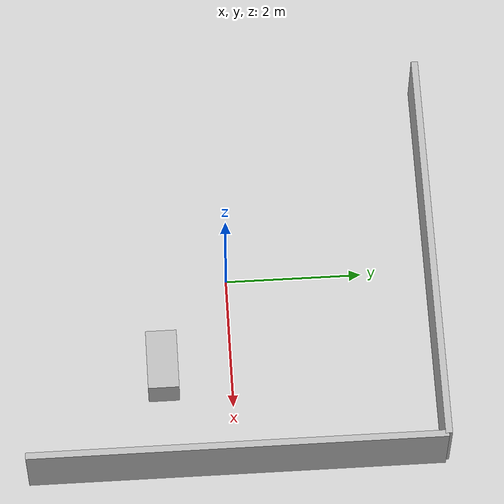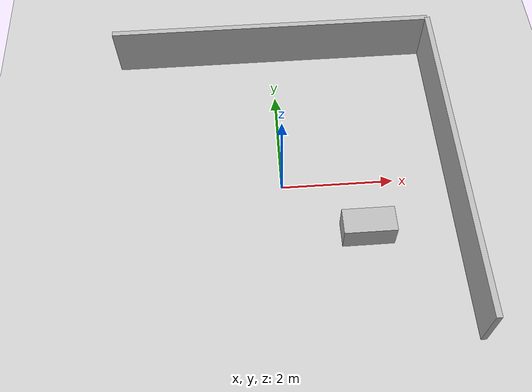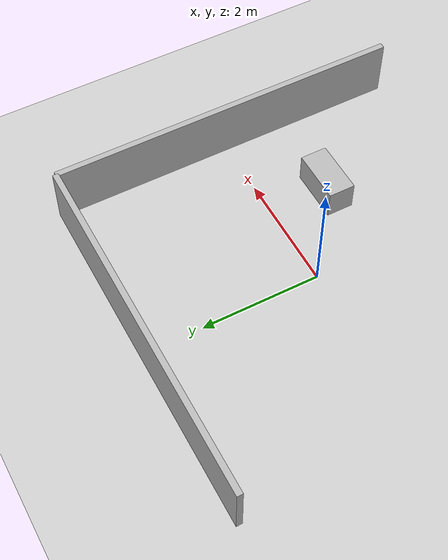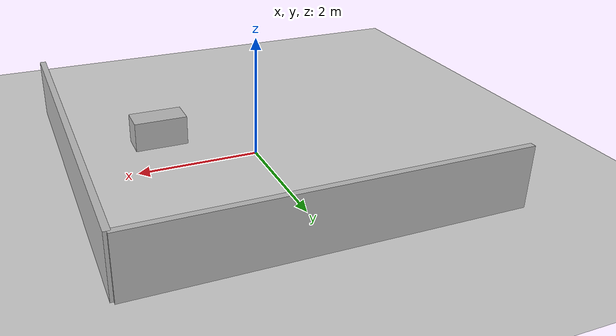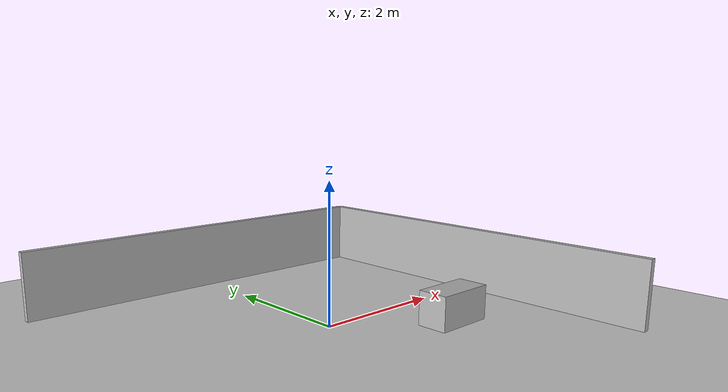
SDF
<?xml version="1.0"?>
<sdf version="1.6">
  <world name="indoor_room">
    <include>
      <uri>model://sun</uri>
    </include>
    <include>
      <uri>model://ground_plane</uri>
    </include>
    <model name="north_wall">
      <static>true</static>
      <pose>0 3 0.5 0 0 0</pose>
      <link name="wall">
        <collision name="collision">
          <geometry>
            <box>
              <size>6 0.1 1</size>
            </box>
          </geometry>
        </collision>
        <visual name="visual">
          <geometry>
            <box>
              <size>6 0.1 1</size>
            </box>
          </geometry>
        </visual>
      </link>
    </model>
    <model name="east_wall">
      <static>true</static>
      <pose>3 0 0.5 0 0 0</pose>
      <link name="wall">
        <collision name="collision">
          <geometry>
            <box>
              <size>0.1 6 1</size>
            </box>
          </geometry>
        </collision>
        <visual name="visual">
          <geometry>
            <box>
              <size>0.1 6 1</size>
            </box>
          </geometry>
        </visual>
      </link>
    </model>
    <model name="service_counter">
      <static>true</static>
      <pose>1.4 -1.0 0.25 0 0 0</pose>
      <link name="counter">
        <collision name="collision">
          <geometry>
            <box>
              <size>0.9 0.45 0.5</size>
            </box>
          </geometry>
        </collision>
        <visual name="visual">
          <geometry>
            <box>
              <size>0.9 0.45 0.5</size>
            </box>
          </geometry>
        </visual>
      </link>
    </model>
  </world>
</sdf>
